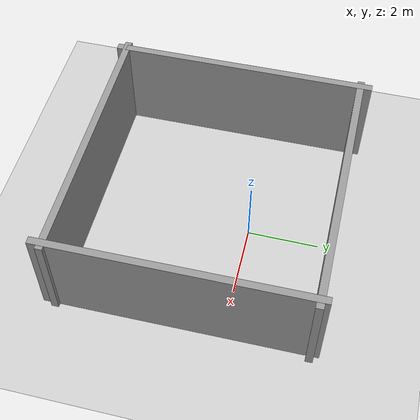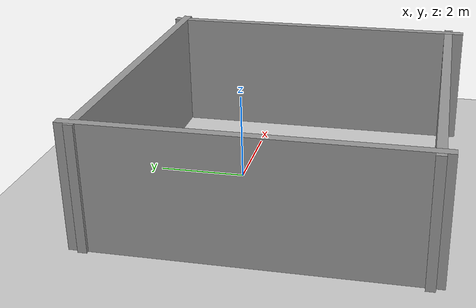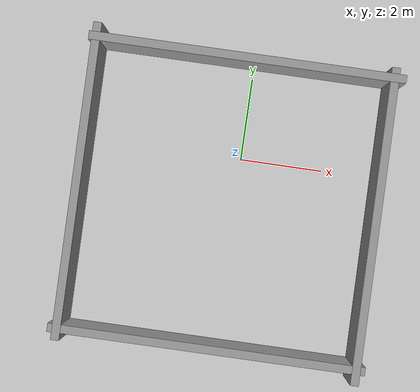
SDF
<sdf version="1.4">
 <world name="default">
  <light name="sun" type="directional">
   <pose>0 0 10 0 -0 0</pose>
   <diffuse>0.8 0.8 0.8 1</diffuse>
   <specular>0.1 0.1 0.1 1</specular>
   <attenuation>
    <range>1000</range>
    <constant>0.9</constant>
    <linear>0.01</linear>
    <quadratic>0.001</quadratic>
   </attenuation>
   <direction>-0.5 0.5 -1</direction>
  </light>
  <model name="ground_plane">
   <static>1</static>
   <link name="link">
    <collision name="collision">
     <geometry><plane><normal>0 0 1</normal><size>100 100</size></plane></geometry>
     <surface><friction><ode><mu>100</mu><mu2>50</mu2></ode></friction></surface>
    </collision>
    <visual name="visual">
     <cast_shadows>0</cast_shadows>
     <geometry><plane><normal>0 0 1</normal><size>100 100</size></plane></geometry>
     <material>
      <script><uri>file://media/materials/scripts/gazebo.material</uri><name>Gazebo/Grey</name></script>
     </material>
    </visual>
    <velocity_decay><linear>0</linear><angular>0</angular></velocity_decay>
   </link>
  </model>
  <physics type="ode">
   <gravity>0 0 -9.8</gravity>
   <real_time_update_rate>1000</real_time_update_rate>
   <max_step_size>0.001</max_step_size>
   <real_time_factor>1</real_time_factor>
  </physics>
  <scene><ambient>0.2 0.2 0.2 1</ambient><background>0.7 0.7 0.7 1</background><shadows>1</shadows></scene>
  <model name="grey_wall">
   <static>1</static>
   <link name="link">
    <pose>0 0 1.4 0 -0 0</pose>
    <collision name="collision"><geometry><box><size>7.5 0.2 2.8</size></box></geometry></collision>
    <visual name="visual">
     <cast_shadows>0</cast_shadows>
     <geometry><box><size>7.5 0.2 2.8</size></box></geometry>
     <material>
      <script>
       <uri>model://grey_wall/materials/scripts</uri>
       <uri>model://grey_wall/materials/textures</uri>
       <name>vrc/grey_wall</name>
      </script>
     </material>
    </visual>
    <velocity_decay><linear>0</linear><angular>0</angular></velocity_decay>
   </link>
   <pose>-0.190174 2.33687 0 0 -0 0</pose>
  </model>
  <model name="grey_wall_1">
   <static>1</static>
   <link name="link">
    <pose>0 0 1.4 0 -0 0</pose>
    <collision name="collision"><geometry><box><size>7.5 0.2 2.8</size></box></geometry></collision>
    <visual name="visual">
     <cast_shadows>0</cast_shadows>
     <geometry><box><size>7.5 0.2 2.8</size></box></geometry>
     <material>
      <script>
       <uri>model://grey_wall/materials/scripts</uri>
       <uri>model://grey_wall/materials/textures</uri>
       <name>vrc/grey_wall</name>
      </script>
     </material>
    </visual>
    <velocity_decay><linear>0</linear><angular>0</angular></velocity_decay>
   </link>
   <pose>3.31737 -1.17167 0 0 0 -1.56319</pose>
  </model>
  <model name="grey_wall_2">
   <static>1</static>
   <link name="link">
    <pose>0 0 1.4 0 -0 0</pose>
    <collision name="collision"><geometry><box><size>7.5 0.2 2.8</size></box></geometry></collision>
    <visual name="visual">
     <cast_shadows>0</cast_shadows>
     <geometry><box><size>7.5 0.2 2.8</size></box></geometry>
     <material>
      <script>
       <uri>model://grey_wall/materials/scripts</uri>
       <uri>model://grey_wall/materials/textures</uri>
       <name>vrc/grey_wall</name>
      </script>
     </material>
    </visual>
    <velocity_decay><linear>0</linear><angular>0</angular></velocity_decay>
   </link>
   <pose>-3.75352 -1.08841 0 0 0 -1.56637</pose>
  </model>
  <model name="grey_wall_3">
   <static>1</static>
   <link name="link">
    <pose>0 0 1.4 0 -0 0</pose>
    <collision name="collision"><geometry><box><size>7.5 0.2 2.8</size></box></geometry></collision>
    <visual name="visual">
     <cast_shadows>0</cast_shadows>
     <geometry><box><size>7.5 0.2 2.8</size></box></geometry>
     <material>
      <script>
       <uri>model://grey_wall/materials/scripts</uri>
       <uri>model://grey_wall/materials/textures</uri>
       <name>vrc/grey_wall</name>
      </script>
     </material>
    </visual>
    <velocity_decay><linear>0</linear><angular>0</angular></velocity_decay>
   </link>
   <pose>-0.200637 -4.56189 0 0 -0 0</pose>
  </model>
 </world>
</sdf>
